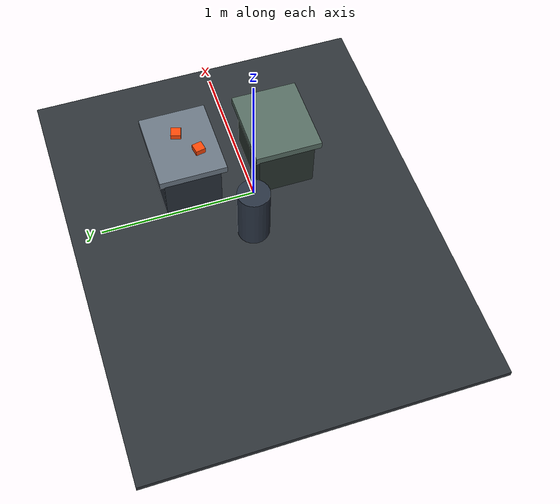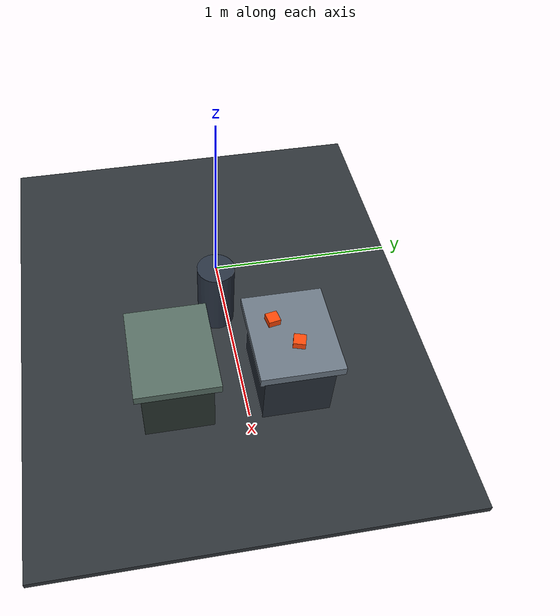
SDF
<sdf version="1.10">
 <world name="square_sorting">
  <physics name="fast_and_stable" type="ignored">
   <max_step_size>0.002</max_step_size>
   <real_time_factor>1.0</real_time_factor>
   <real_time_update_rate>500</real_time_update_rate>
  </physics>
  <plugin filename="gz-sim-physics-system" name="gz::sim::systems::Physics"/>
  <plugin filename="gz-sim-user-commands-system" name="gz::sim::systems::UserCommands"/>
  <plugin filename="gz-sim-scene-broadcaster-system" name="gz::sim::systems::SceneBroadcaster"/>
  <plugin filename="gz-sim-sensors-system" name="gz::sim::systems::Sensors">
   <render_engine>ogre2</render_engine>
  </plugin>
  <scene>
   <ambient>0.45 0.45 0.45 1</ambient>
   <background>0.08 0.10 0.13 1</background>
   <shadows>true</shadows>
  </scene>
  <light name="sun" type="directional">
   <pose>0 0 3 0 0 0</pose>
   <diffuse>0.9 0.9 0.9 1</diffuse>
   <specular>0.2 0.2 0.2 1</specular>
   <direction>-0.4 0.2 -1.0</direction>
  </light>
  <light name="work_light" type="point">
   <pose>0.55 0 1.5 0 0 0</pose>
   <cast_shadows>false</cast_shadows>
   <diffuse>0.9 0.9 0.9 1</diffuse>
   <specular>0.1 0.1 0.1 1</specular>
   <attenuation>
    <range>4</range>
    <constant>0.6</constant>
    <linear>0.1</linear>
    <quadratic>0.01</quadratic>
   </attenuation>
  </light>
  <model name="ground">
   <static>true</static>
   <pose>0 0 -0.45 0 0 0</pose>
   <link name="link">
    <collision name="collision"><geometry><box><size>3.0 2.4 0.04</size></box></geometry></collision>
    <visual name="visual">
     <geometry><box><size>3.0 2.4 0.04</size></box></geometry>
     <material><ambient>0.14 0.16 0.18 1</ambient><diffuse>0.18 0.20 0.22 1</diffuse></material>
    </visual>
   </link>
  </model>
  <model name="robot_pedestal">
   <static>true</static>
   <pose>0 0 -0.225 0 0 0</pose>
   <link name="link">
    <collision name="collision">
     <geometry><cylinder><radius>0.11</radius><length>0.45</length></cylinder></geometry>
    </collision>
    <visual name="visual">
     <geometry><cylinder><radius>0.11</radius><length>0.45</length></cylinder></geometry>
     <material><ambient>0.12 0.15 0.19 1</ambient><diffuse>0.16 0.20 0.26 1</diffuse></material>
    </visual>
   </link>
  </model>
  <model name="source_table">
   <static>true</static>
   <pose>0.53 0.33 -0.025 0 0 0</pose>
   <link name="table">
    <collision name="top_collision"><geometry><box><size>0.56 0.46 0.05</size></box></geometry></collision>
    <visual name="top_visual">
     <geometry><box><size>0.56 0.46 0.05</size></box></geometry>
     <material><ambient>0.34 0.38 0.42 1</ambient><diffuse>0.42 0.47 0.52 1</diffuse></material>
    </visual>
    <collision name="leg_1_collision">
     <pose>0.22 0.17 -0.225 0 0 0</pose>
     <geometry><box><size>0.045 0.045 0.40</size></box></geometry>
    </collision>
    <collision name="leg_2_collision">
     <pose>0.22 -0.17 -0.225 0 0 0</pose>
     <geometry><box><size>0.045 0.045 0.40</size></box></geometry>
    </collision>
    <collision name="leg_3_collision">
     <pose>-0.22 0.17 -0.225 0 0 0</pose>
     <geometry><box><size>0.045 0.045 0.40</size></box></geometry>
    </collision>
    <collision name="leg_4_collision">
     <pose>-0.22 -0.17 -0.225 0 0 0</pose>
     <geometry><box><size>0.045 0.045 0.40</size></box></geometry>
    </collision>
    <visual name="legs_visual">
     <pose>0 0 -0.225 0 0 0</pose>
     <geometry><box><size>0.49 0.39 0.40</size></box></geometry>
     <material><ambient>0.12 0.14 0.17 1</ambient><diffuse>0.15 0.18 0.22 1</diffuse></material>
    </visual>
   </link>
  </model>
  <model name="destination_table">
   <static>true</static>
   <pose>0.53 -0.33 -0.025 0 0 0</pose>
   <link name="table">
    <collision name="top_collision"><geometry><box><size>0.56 0.46 0.05</size></box></geometry></collision>
    <visual name="top_visual">
     <geometry><box><size>0.56 0.46 0.05</size></box></geometry>
     <material><ambient>0.27 0.34 0.31 1</ambient><diffuse>0.34 0.43 0.39 1</diffuse></material>
    </visual>
    <collision name="leg_1_collision">
     <pose>0.22 0.17 -0.225 0 0 0</pose>
     <geometry><box><size>0.045 0.045 0.40</size></box></geometry>
    </collision>
    <collision name="leg_2_collision">
     <pose>0.22 -0.17 -0.225 0 0 0</pose>
     <geometry><box><size>0.045 0.045 0.40</size></box></geometry>
    </collision>
    <collision name="leg_3_collision">
     <pose>-0.22 0.17 -0.225 0 0 0</pose>
     <geometry><box><size>0.045 0.045 0.40</size></box></geometry>
    </collision>
    <collision name="leg_4_collision">
     <pose>-0.22 -0.17 -0.225 0 0 0</pose>
     <geometry><box><size>0.045 0.045 0.40</size></box></geometry>
    </collision>
    <visual name="legs_visual">
     <pose>0 0 -0.225 0 0 0</pose>
     <geometry><box><size>0.49 0.39 0.40</size></box></geometry>
     <material><ambient>0.12 0.15 0.14 1</ambient><diffuse>0.16 0.20 0.18 1</diffuse></material>
    </visual>
   </link>
  </model>
  <model name="square_1">
   <pose>0.44 0.24 0.021 0 0 0.18</pose>
   <link name="body">
    <inertial>
     <mass>0.08</mass>
     <inertia><ixx>0.000035</ixx><iyy>0.000035</iyy><izz>0.00006</izz></inertia>
    </inertial>
    <collision name="collision">
     <geometry><box><size>0.068 0.068 0.04</size></box></geometry>
     <surface><friction><ode><mu>0.8</mu><mu2>0.8</mu2></ode></friction></surface>
    </collision>
    <visual name="visual">
     <geometry><box><size>0.068 0.068 0.04</size></box></geometry>
     <material><ambient>1.0 0.22 0.02 1</ambient><diffuse>1.0 0.28 0.03 1</diffuse></material>
    </visual>
   </link>
  </model>
  <model name="square_2">
   <pose>0.61 0.35 0.021 0 0 -0.30</pose>
   <link name="body">
    <inertial>
     <mass>0.08</mass>
     <inertia><ixx>0.000035</ixx><iyy>0.000035</iyy><izz>0.00006</izz></inertia>
    </inertial>
    <collision name="collision">
     <geometry><box><size>0.068 0.068 0.04</size></box></geometry>
     <surface><friction><ode><mu>0.8</mu><mu2>0.8</mu2></ode></friction></surface>
    </collision>
    <visual name="visual">
     <geometry><box><size>0.068 0.068 0.04</size></box></geometry>
     <material><ambient>1.0 0.22 0.02 1</ambient><diffuse>1.0 0.28 0.03 1</diffuse></material>
    </visual>
   </link>
  </model>
  <model name="overhead_camera">
   <static>true</static>
   <pose>0.52 0 1.35 0 1.57079632679 0</pose>
   <link name="camera_link">
    <sensor name="sorting_camera" type="camera">
     <always_on>true</always_on>
     <update_rate>12</update_rate>
     <visualize>true</visualize>
     <topic>/sorting_camera/image</topic>
     <camera>
      <horizontal_fov>1.0471975512</horizontal_fov>
      <image><width>800</width><height>700</height><format>RGB_INT8</format></image>
      <clip><near>0.05</near><far>5.0</far></clip>
      <camera_info_topic>/sorting_camera/camera_info</camera_info_topic>
     </camera>
    </sensor>
   </link>
  </model>
 </world>
</sdf>
